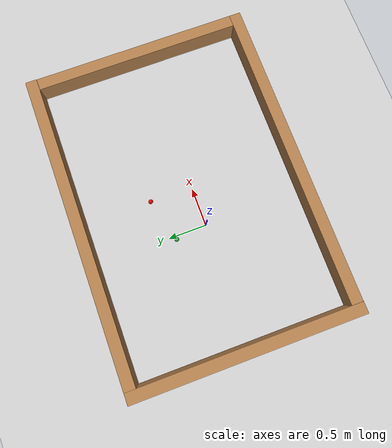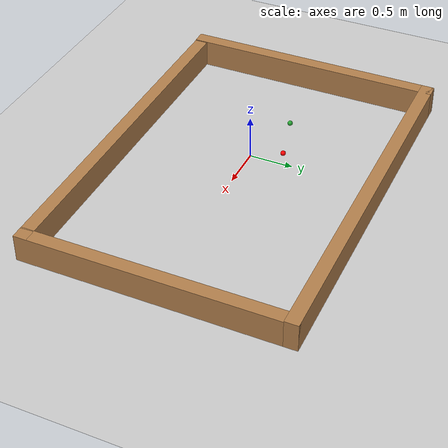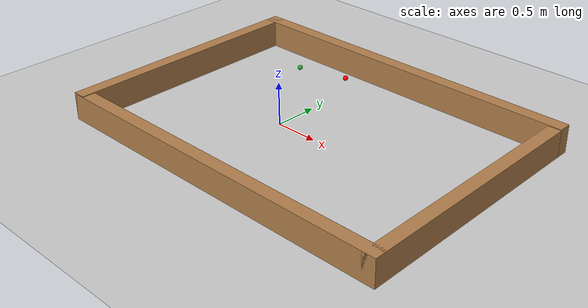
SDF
<sdf version="1.7">
 <world name="default">
  <light name="sun" type="directional">
   <pose>0 0 10 0 -0 0</pose>
   <diffuse>0.8 0.8 0.8 1</diffuse>
   <specular>0.2 0.2 0.2 1</specular>
   <attenuation>
    <range>1000</range>
    <constant>0.9</constant>
    <linear>0.01</linear>
    <quadratic>0.001</quadratic>
   </attenuation>
   <direction>-0.5 0.1 -0.9</direction>
   <spot><inner_angle>0</inner_angle><outer_angle>0</outer_angle><falloff>0</falloff></spot>
  </light>
  <model name="ground_plane">
   <static>1</static>
   <link name="link">
    <collision name="collision">
     <geometry><plane><normal>0 0 1</normal><size>100 100</size></plane></geometry>
     <surface>
      <contact><collide_bitmask>65535</collide_bitmask></contact>
      <friction><ode><mu>200</mu><mu2>100</mu2></ode></friction>
     </surface>
    </collision>
    <visual name="visual">
     <cast_shadows>0</cast_shadows>
     <geometry><plane><normal>0 0 1</normal><size>100 100</size></plane></geometry>
     <material>
      <ambient>0.8 0.8 0.8 1</ambient>
      <diffuse>0.8 0.8 0.8 1</diffuse>
      <specular>0.8 0.8 0.8 1</specular>
     </material>
    </visual>
   </link>
  </model>
  <gravity>0 0 -5</gravity>
  <magnetic_field>6e-06 2.3e-05 -4.2e-05</magnetic_field>
  <atmosphere type="adiabatic"/>
  <physics type="ode">
   <max_step_size>0.001</max_step_size>
   <real_time_factor>1</real_time_factor>
   <real_time_update_rate>1000</real_time_update_rate>
  </physics>
  <scene><ambient>0.4 0.4 0.4 1</ambient><background>0.7 0.7 0.7 1</background><shadows>1</shadows></scene>
  <spherical_coordinates>
   <surface_model>EARTH_WGS84</surface_model>
   <latitude_deg>0</latitude_deg>
   <longitude_deg>0</longitude_deg>
   <elevation>0</elevation>
   <heading_deg>0</heading_deg>
  </spherical_coordinates>
  <model name="Track">
   <pose>0.42152 0.085966 0 0 -0 0</pose>
   <link name="Wall_10">
    <collision name="Wall_10_Collision">
     <geometry><box><size>3 0.15 0.32</size></box></geometry>
     <pose>0 0 0.16 0 -0 0</pose>
    </collision>
    <visual name="Wall_10_Visual">
     <pose>0 0 0.16 0 -0 0</pose>
     <geometry><box><size>3 0.15 0.32</size></box></geometry>
     <material>
      <script><uri>file://media/materials/scripts/gazebo.material</uri><name>Gazebo/Wood</name></script>
      <ambient>1 1 1 1</ambient>
     </material>
     <meta><layer>0</layer></meta>
    </visual>
    <pose>-2.025 -0 0 0 -0 1.5708</pose>
   </link>
   <link name="Wall_11">
    <collision name="Wall_11_Collision">
     <geometry><box><size>4.2 0.15 0.32</size></box></geometry>
     <pose>0 0 0.16 0 -0 0</pose>
    </collision>
    <visual name="Wall_11_Visual">
     <pose>0 0 0.16 0 -0 0</pose>
     <geometry><box><size>4.2 0.15 0.32</size></box></geometry>
     <material>
      <script><uri>file://media/materials/scripts/gazebo.material</uri><name>Gazebo/Wood</name></script>
      <ambient>1 1 1 1</ambient>
     </material>
     <meta><layer>0</layer></meta>
    </visual>
    <pose>0 1.425 0 0 -0 0</pose>
   </link>
   <link name="Wall_6">
    <collision name="Wall_6_Collision">
     <geometry><box><size>4.2 0.15 0.31</size></box></geometry>
     <pose>0 0 0.155 0 -0 0</pose>
    </collision>
    <visual name="Wall_6_Visual">
     <pose>0 0 0.155 0 -0 0</pose>
     <geometry><box><size>4.2 0.15 0.31</size></box></geometry>
     <material>
      <script><uri>file://media/materials/scripts/gazebo.material</uri><name>Gazebo/Wood</name></script>
      <ambient>1 1 1 1</ambient>
     </material>
     <meta><layer>0</layer></meta>
    </visual>
    <pose>0 -1.425 0 0 -0 0</pose>
   </link>
   <link name="Wall_8">
    <collision name="Wall_8_Collision">
     <geometry><box><size>3 0.15 0.31</size></box></geometry>
     <pose>0 0 0.155 0 -0 0</pose>
    </collision>
    <visual name="Wall_8_Visual">
     <pose>0 0 0.155 0 -0 0</pose>
     <geometry><box><size>3 0.15 0.31</size></box></geometry>
     <material>
      <script><uri>file://media/materials/scripts/gazebo.material</uri><name>Gazebo/Wood</name></script>
      <ambient>1 1 1 1</ambient>
     </material>
     <meta><layer>0</layer></meta>
    </visual>
    <pose>2.025 -0 0 0 -0 1.5708</pose>
   </link>
   <static>1</static>
  </model>
  <model name="unit_sphere">
   <pose>-0.1 0.422963 0.5 0 -0 0</pose>
   <link name="link">
    <inertial>
     <mass>0.005</mass>
     <inertia><ixx>0.1</ixx><ixy>0</ixy><ixz>0</ixz><iyy>0.1</iyy><iyz>0</iyz><izz>0.1</izz></inertia>
    </inertial>
    <collision name="collision"><geometry><sphere><radius>0.0275</radius></sphere></geometry></collision>
    <visual name="visual">
     <geometry><sphere><radius>0.0275</radius></sphere></geometry>
     <material>
      <script><name>Gazebo/Green</name><uri>file://media/materials/scripts/gazebo.material</uri></script>
     </material>
    </visual>
   </link>
  </model>
  <model name="unit_sphere_0">
   <pose>0.433707 0.562914 0.5 0 -0 0</pose>
   <link name="link">
    <inertial>
     <mass>0.005</mass>
     <inertia><ixx>0.1</ixx><ixy>0</ixy><ixz>0</ixz><iyy>0.1</iyy><iyz>0</iyz><izz>0.1</izz></inertia>
    </inertial>
    <collision name="collision"><geometry><sphere><radius>0.0275</radius></sphere></geometry></collision>
    <visual name="visual">
     <geometry><sphere><radius>0.0275</radius></sphere></geometry>
     <material>
      <ambient>1 0 0 1</ambient>
      <diffuse>1 0 0 1</diffuse>
      <specular>0.1 0.1 0.1 1</specular>
      <emissive>0 0 0 0</emissive>
     </material>
    </visual>
   </link>
  </model>
 </world>
</sdf>
